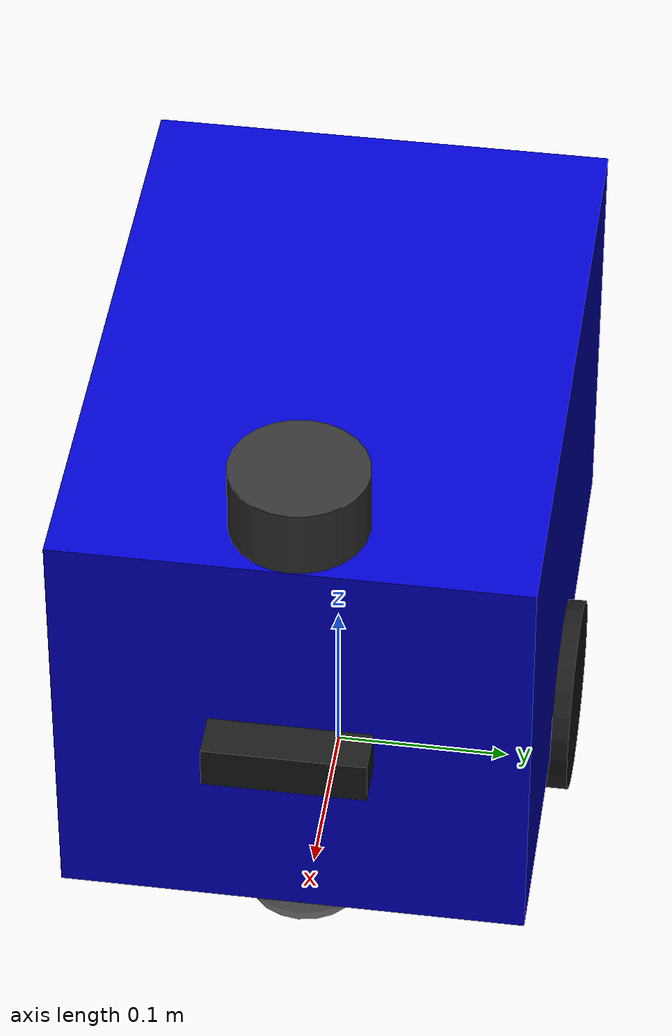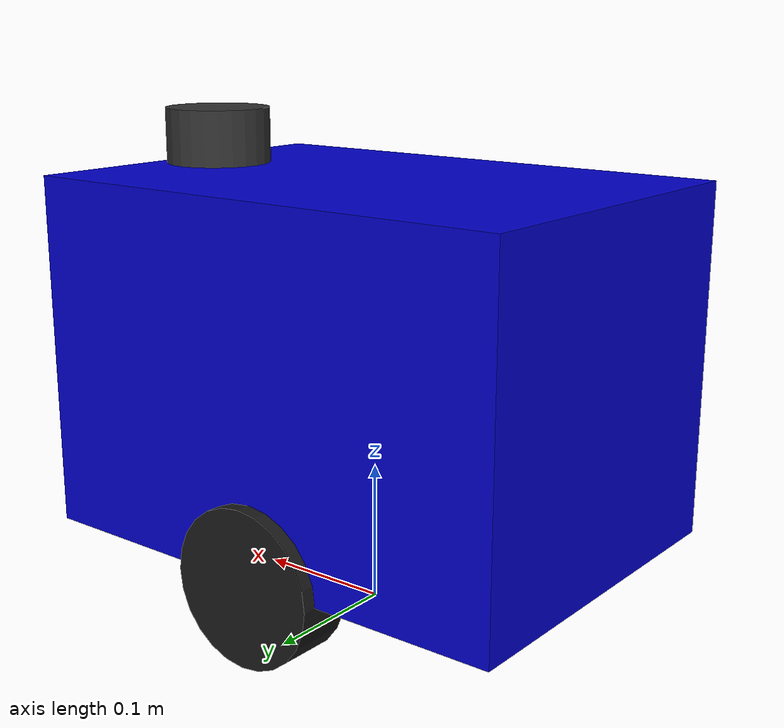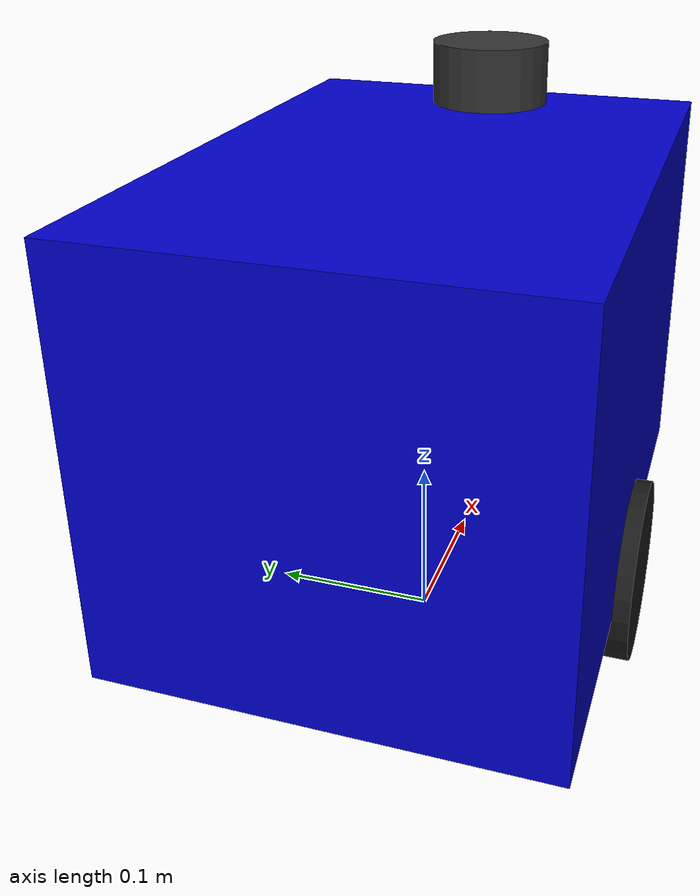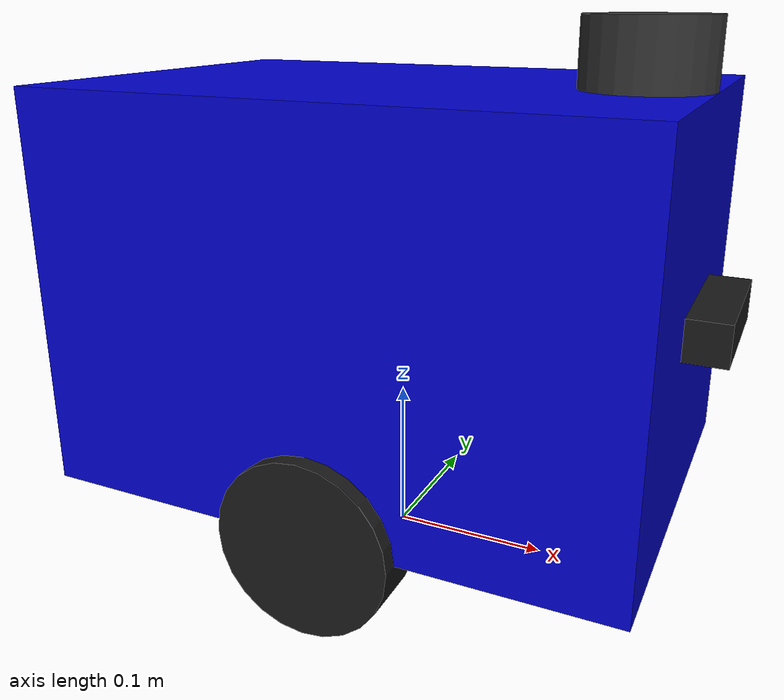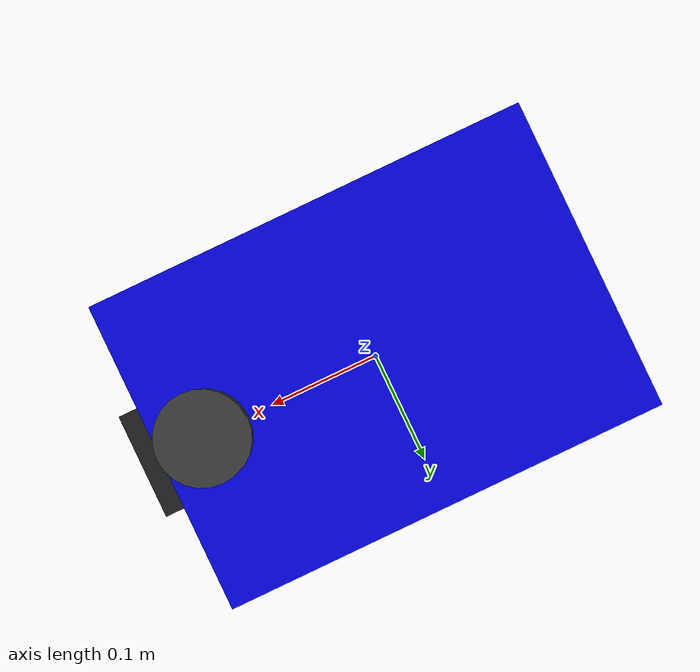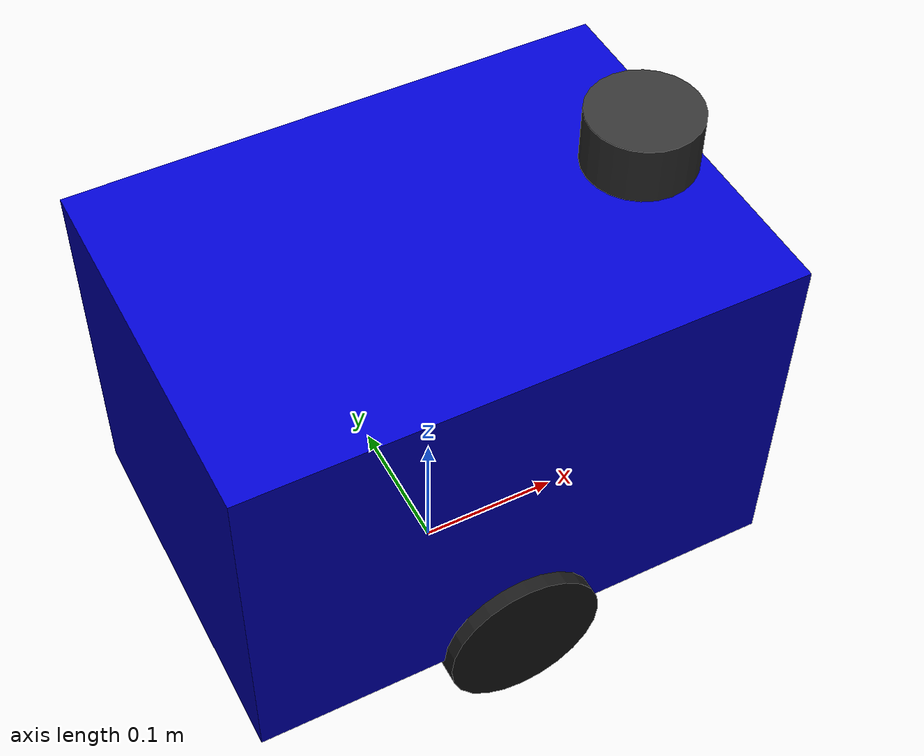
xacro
<?xml version="1.0" encoding="UTF-8"?>
<robot name="aiear_robot" xmlns:xacro="http://www.ros.org/wiki/xacro">

    <!-- ================================================================
       ARGUMENTS & PROPERTIES
       ================================================================ -->
    <xacro:arg name="wheel_count" default="2" /> <!-- Supports 2 or 4 -->
    <xacro:arg name="use_ros2_control" default="false" />
    <xacro:arg name="is_sim" default="true" />

    <!-- Chassis (Updated dimensions) -->
    <xacro:property name="chassis_length" value="0.37" />
    <xacro:property name="chassis_width" value="0.26" />
    <xacro:property name="chassis_height" value="0.25" />
    <xacro:property name="chassis_mass" value="3.0" />

    <!-- Wheels (Updated dimensions) -->
    <xacro:property name="wheel_radius" value="0.055" />
    <xacro:property name="wheel_width" value="0.04" />
    <xacro:property name="wheel_mass" value="0.3" />
    <xacro:property name="wheelbase" value="0.24" />
    <xacro:property name="wheel_y" value="${wheelbase/2.0}" />
    <xacro:property name="wheel_z" value="${-chassis_height/2}" />

    <!-- Wheel longitudinal positions -->
    <xacro:property name="wheel_front_x" value="0.10" />
    <xacro:property name="wheel_rear_x" value="-0.10" />

    <!-- Caster (passive ball caster, ø50 mm) - Used in 2-wheel mode -->
    <xacro:property name="caster_radius" value="0.040" />
    <xacro:property name="caster_mass" value="0.05" />
    <xacro:property name="caster_x" value="0.13" />
    <xacro:property name="caster_z" value="${-(chassis_height/2 + wheel_radius - caster_radius)}" />

    <!-- ================================================================
       SENSORS (Based on AIEAR design)
       ================================================================ -->
    <!-- RPLiDAR A1 -->
    <xacro:property name="lidar_radius" value="0.038" />
    <xacro:property name="lidar_height" value="0.040" />
    <xacro:property name="lidar_mass" value="0.17" />
    <!-- Positioned at the TOP EDGE of the FRONT -->
    <xacro:property name="lidar_x" value="${chassis_length/2 - lidar_radius}" />
    <xacro:property name="lidar_z" value="${chassis_height/2 + lidar_height/2}" />

    <!-- IMX500 Camera -->
    <xacro:property name="cam_mass" value="0.05" />
    <xacro:property name="cam_depth" value="0.025" />
    <!-- Positioned at the FRONT FACE (middle) -->
    <xacro:property name="cam_x" value="${chassis_length/2 + cam_depth/2}" />
    <xacro:property name="cam_z" value="0" />
    <xacro:property name="cam_pitch" value="0" /> <!-- Facing forward -->

    <!-- ================================================================
       INCLUDES
       ================================================================ -->
    <xacro:include filename="$(find aiear_robot)/model/robot.gazebo" />

    <!-- Optional: Include ROS2 Control if requested -->
    <xacro:if value="$(arg use_ros2_control)">
        <xacro:include filename="$(find aiear_robot)/model/ros2_control.xacro" />
    </xacro:if>

    <!-- ================================================================
       INERTIA MACROS
       ================================================================ -->
    <xacro:macro name="box_inertia" params="m x y z">
        <inertial>
            <origin xyz="0 0 0" rpy="0 0 0" />
            <mass value="${m}" />
            <inertia ixx="${m*(y*y+z*z)/12}" ixy="0.0" ixz="0.0"
                     iyy="${m*(x*x+z*z)/12}" iyz="0.0"
                     izz="${m*(x*x+y*y)/12}" />
        </inertial>
    </xacro:macro>

    <xacro:macro name="wheel_inertia" params="m r h">
        <inertial>
            <origin xyz="0 0 0" rpy="${pi/2} 0 0" />
            <mass value="${m}" />
            <inertia ixx="${m*(3*r*r+h*h)/12}" ixy="0.0" ixz="0.0"
                     iyy="${m*r*r/2}" iyz="0.0"
                     izz="${m*(3*r*r+h*h)/12}" />
        </inertial>
    </xacro:macro>

    <xacro:macro name="cylinder_inertia_z" params="m r h">
        <inertial>
            <origin xyz="0 0 0" rpy="0 0 0" />
            <mass value="${m}" />
            <inertia ixx="${m*(3*r*r+h*h)/12}" ixy="0.0" ixz="0.0"
                     iyy="${m*(3*r*r+h*h)/12}" iyz="0.0"
                     izz="${m*r*r/2}" />
        </inertial>
    </xacro:macro>

    <xacro:macro name="sphere_inertia" params="m r">
        <inertial>
            <origin xyz="0 0 0" rpy="0 0 0" />
            <mass value="${m}" />
            <inertia ixx="${2*m*r*r/5}" ixy="0.0" ixz="0.0"
                     iyy="${2*m*r*r/5}" iyz="0.0"
                     izz="${2*m*r*r/5}" />
        </inertial>
    </xacro:macro>

    <!-- ================================================================
       WHEEL MACRO
       ================================================================ -->
    <xacro:macro name="wheel" params="prefix x y">
        <link name="${prefix}_wheel_link">
            <visual>
                <origin xyz="0 0 0" rpy="${pi/2} 0 0" />
                <geometry>
                    <cylinder radius="${wheel_radius}" length="${wheel_width}" />
                </geometry>
                <material name="black">
                    <color rgba="0.1 0.1 0.1 1.0" />
                </material>
            </visual>
            <collision>
                <origin xyz="0 0 0" rpy="${pi/2} 0 0" />
                <geometry>
                    <cylinder radius="${wheel_radius}" length="${wheel_width}" />
                </geometry>
            </collision>
            <xacro:wheel_inertia m="${wheel_mass}" r="${wheel_radius}" h="${wheel_width}" />
        </link>

        <joint name="${prefix}_wheel_joint" type="continuous">
            <parent link="base_link" />
            <child link="${prefix}_wheel_link" />
            <origin xyz="${x} ${y} ${wheel_z}" rpy="0 0 0" />
            <axis xyz="0 1 0" />
            <dynamics damping="0.1" friction="0.1" />
        </joint>
    </xacro:macro>

    <!-- ================================================================
       LINKS & JOINTS
       ================================================================ -->

    <!-- base_footprint -->
    <link name="base_footprint" />

    <joint name="base_footprint_joint" type="fixed">
        <parent link="base_footprint" />
        <child link="base_link" />
        <origin xyz="0 0 ${wheel_radius + chassis_height/2}" rpy="0 0 0" />
    </joint>

    <!-- base_link (Chassis) -->
    <link name="base_link">
        <visual>
            <origin xyz="0 0 0" rpy="0 0 0" />
            <geometry>
                <box size="${chassis_length} ${chassis_width} ${chassis_height}" />
            </geometry>
            <material name="blue">
                <color rgba="0.0 0.0 0.8 1.0" />
            </material>
        </visual>
        <collision>
            <origin xyz="0 0 0" rpy="0 0 0" />
            <geometry>
                <box size="${chassis_length} ${chassis_width} ${chassis_height}" />
            </geometry>
        </collision>
        <xacro:box_inertia m="${chassis_mass}" x="${chassis_length}" y="${chassis_width}" z="${chassis_height}" />
    </link>

    <!-- Wheel Configuration Logic -->
    <xacro:if value="${'$(arg wheel_count)' == '2'}">
        <!-- 2-Wheel Mode: Middle drive wheels + Front Caster -->
        <xacro:wheel prefix="left" x="0" y="${wheel_y}" />
        <xacro:wheel prefix="right" x="0" y="${-wheel_y}" />

        <!-- Caster -->
        <link name="caster_link">
            <visual>
                <geometry>
                    <sphere radius="${caster_radius}" />
                </geometry>
                <material name="grey">
                    <color rgba="0.5 0.5 0.5 1.0" />
                </material>
            </visual>
            <collision>
                <geometry>
                    <sphere radius="${caster_radius}" />
                </geometry>
            </collision>
            <xacro:sphere_inertia m="${caster_mass}" r="${caster_radius}" />
        </link>

        <joint name="caster_joint" type="fixed">
            <parent link="base_link" />
            <child link="caster_link" />
            <origin xyz="${caster_x} 0 ${caster_z}" rpy="0 0 0" />
        </joint>
    </xacro:if>

    <xacro:if value="${'$(arg wheel_count)' == '4'}">
        <!-- 4-Wheel Mode: Front and Rear drive wheels -->
        <xacro:wheel prefix="front_left" x="${wheel_front_x}" y="${wheel_y}" />
        <xacro:wheel prefix="front_right" x="${wheel_front_x}" y="${-wheel_y}" />
        <xacro:wheel prefix="rear_left" x="${wheel_rear_x}" y="${wheel_y}" />
        <xacro:wheel prefix="rear_right" x="${wheel_rear_x}" y="${-wheel_y}" />
    </xacro:if>

    <!-- LiDAR -->
    <link name="lidar_link">
        <visual>
            <geometry>
                <cylinder radius="${lidar_radius}" length="${lidar_height}" />
            </geometry>
            <material name="dark_grey"><color rgba="0.2 0.2 0.2 1.0" /></material>
        </visual>
        <collision>
            <geometry>
                <cylinder radius="${lidar_radius}" length="${lidar_height}" />
            </geometry>
        </collision>
        <xacro:cylinder_inertia_z m="${lidar_mass}" r="${lidar_radius}" h="${lidar_height}" />
    </link>

    <joint name="lidar_joint" type="fixed">
        <parent link="base_link" />
        <child link="lidar_link" />
        <origin xyz="${lidar_x} 0 ${lidar_z}" rpy="0 0 0" />
    </joint>

    <!-- Camera -->
    <link name="camera_link">
        <visual>
            <geometry><box size="0.025 0.090 0.025" /></geometry>
            <material name="black" />
        </visual>
        <collision>
            <geometry><box size="0.025 0.090 0.025" /></geometry>
        </collision>
        <xacro:box_inertia m="${cam_mass}" x="0.025" y="0.090" z="0.025" />
    </link>

    <joint name="camera_joint" type="fixed">
        <parent link="base_link" />
        <child link="camera_link" />
        <origin xyz="${cam_x} 0 ${cam_z}" rpy="0 ${cam_pitch} 0" />
    </joint>

    <!-- Camera optical frame -->
    <link name="camera_optical_link" />
    <joint name="camera_optical_joint" type="fixed">
        <parent link="camera_link" />
        <child link="camera_optical_link" />
        <origin xyz="0 0 0" rpy="${-pi/2} 0 ${-pi/2}" />
    </joint>

</robot>
